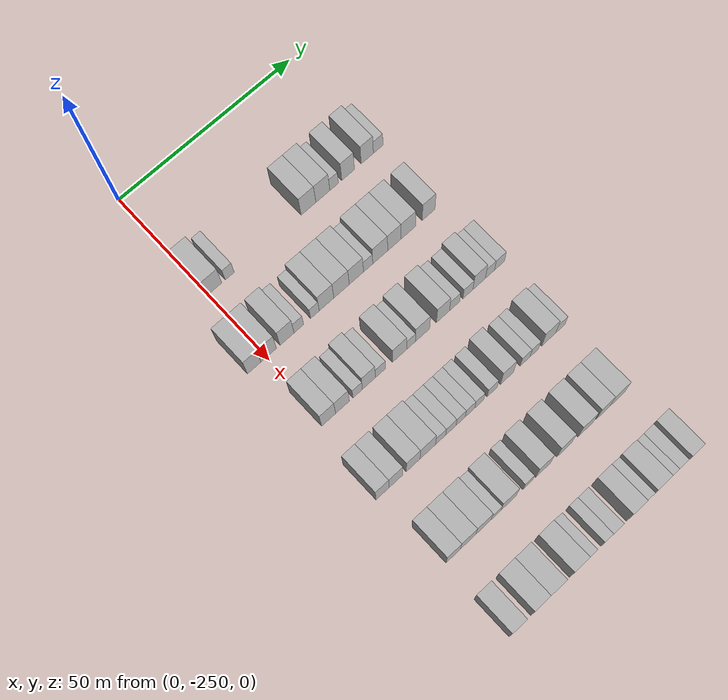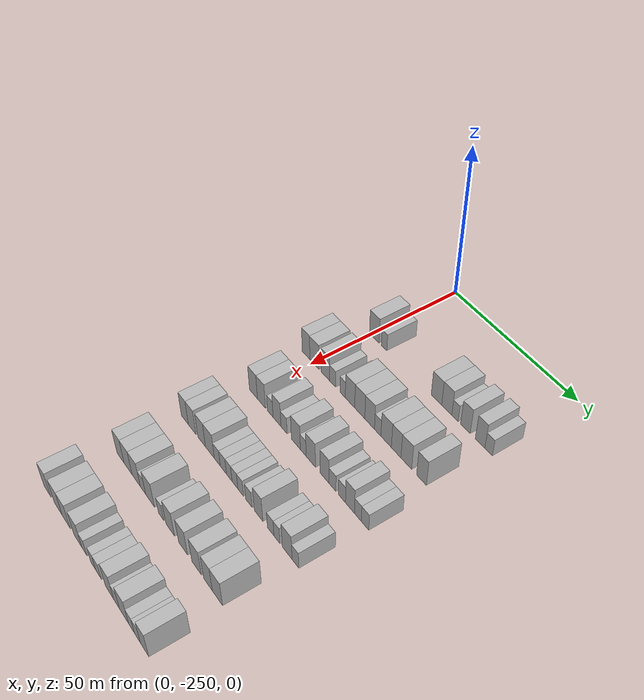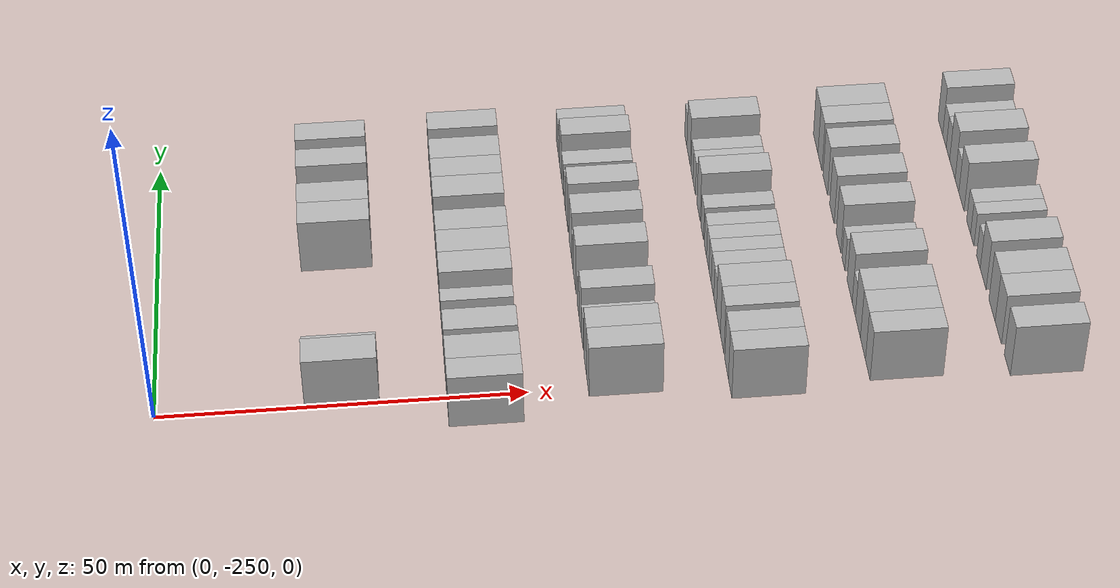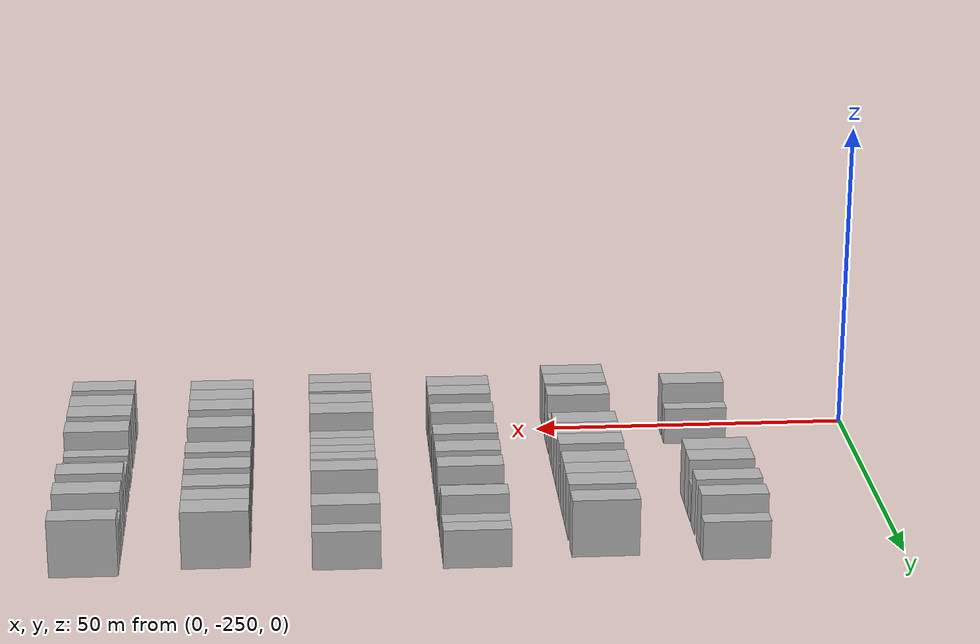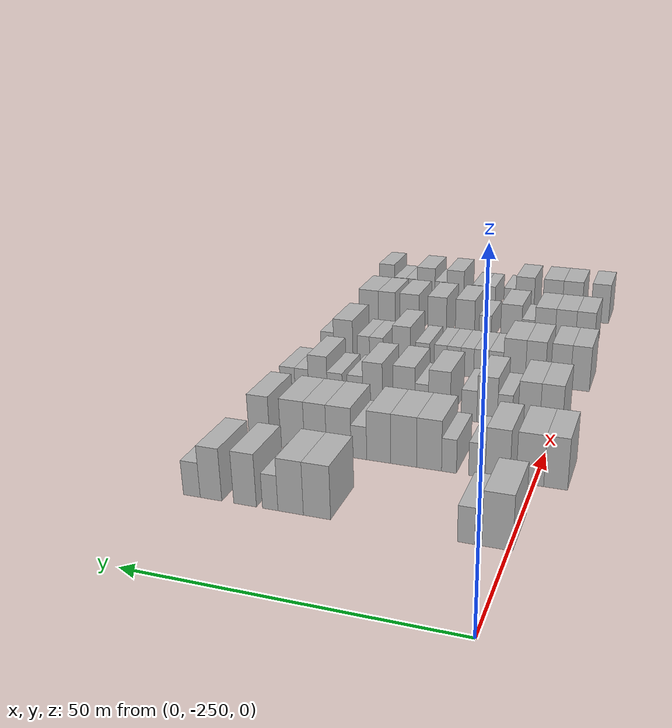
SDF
<sdf version="1.6">
 <world name="default">
  <model name="building_26">
   <static>1</static>
   <pose>25.0000 -248.3476 0 0.000000 0.000000 0.000000</pose>
   <link name="link">
    <pose>0 0 4.50 0 0 0</pose>
    <collision name="collision"><geometry><box><size>10.0000 4.4850 9.0000</size></box></geometry></collision>
    <visual name="visual">
     <cast_shadows>0</cast_shadows>
     <geometry><box><size>10.0000 4.4850 9.0000</size></box></geometry>
     <material>
      <script>
       <uri>model://HANNAS_wall/materials/scripts</uri>
       <uri>model://HANNAS_wall/materials/textures</uri>
       <name>vrc/HANNAS_wall</name>
      </script>
     </material>
    </visual>
   </link>
  </model>
  <model name="building_27">
   <static>1</static>
   <pose>25.0000 -243.8328 0 0.000000 0.000000 0.000000</pose>
   <link name="link">
    <pose>0 0 3.00 0 0 0</pose>
    <collision name="collision"><geometry><box><size>10.0000 2.5447 6.0000</size></box></geometry></collision>
    <visual name="visual">
     <cast_shadows>0</cast_shadows>
     <geometry><box><size>10.0000 2.5447 6.0000</size></box></geometry>
     <material>
      <script>
       <uri>model://HANNAS_wall/materials/scripts</uri>
       <uri>model://HANNAS_wall/materials/textures</uri>
       <name>vrc/HANNAS_wall</name>
      </script>
     </material>
    </visual>
   </link>
  </model>
  <model name="building_28">
   <static>1</static>
   <pose>25.0000 -221.0363 0 0.000000 0.000000 0.000000</pose>
   <link name="link">
    <pose>0 0 4.50 0 0 0</pose>
    <collision name="collision"><geometry><box><size>10.0000 4.3495 9.0000</size></box></geometry></collision>
    <visual name="visual">
     <cast_shadows>0</cast_shadows>
     <geometry><box><size>10.0000 4.3495 9.0000</size></box></geometry>
     <material>
      <script>
       <uri>model://HANNAS_wall/materials/scripts</uri>
       <uri>model://HANNAS_wall/materials/textures</uri>
       <name>vrc/HANNAS_wall</name>
      </script>
     </material>
    </visual>
   </link>
  </model>
  <model name="building_29">
   <static>1</static>
   <pose>25.0000 -216.8001 0 0.000000 0.000000 0.000000</pose>
   <link name="link">
    <pose>0 0 4.50 0 0 0</pose>
    <collision name="collision"><geometry><box><size>10.0000 4.1228 9.0000</size></box></geometry></collision>
    <visual name="visual">
     <cast_shadows>0</cast_shadows>
     <geometry><box><size>10.0000 4.1228 9.0000</size></box></geometry>
     <material>
      <script>
       <uri>model://HANNAS_wall/materials/scripts</uri>
       <uri>model://HANNAS_wall/materials/textures</uri>
       <name>vrc/HANNAS_wall</name>
      </script>
     </material>
    </visual>
   </link>
  </model>
  <model name="building_30">
   <static>1</static>
   <pose>25.0000 -213.4665 0 0.000000 0.000000 0.000000</pose>
   <link name="link">
    <pose>0 0 3.00 0 0 0</pose>
    <collision name="collision"><geometry><box><size>10.0000 2.5444 6.0000</size></box></geometry></collision>
    <visual name="visual">
     <cast_shadows>0</cast_shadows>
     <geometry><box><size>10.0000 2.5444 6.0000</size></box></geometry>
     <material>
      <script>
       <uri>model://HANNAS_wall/materials/scripts</uri>
       <uri>model://HANNAS_wall/materials/textures</uri>
       <name>vrc/HANNAS_wall</name>
      </script>
     </material>
    </visual>
   </link>
  </model>
  <model name="building_31">
   <static>1</static>
   <pose>25.0000 -209.2966 0 0.000000 0.000000 0.000000</pose>
   <link name="link">
    <pose>0 0 4.50 0 0 0</pose>
    <collision name="collision"><geometry><box><size>10.0000 3.7954 9.0000</size></box></geometry></collision>
    <visual name="visual">
     <cast_shadows>0</cast_shadows>
     <geometry><box><size>10.0000 3.7954 9.0000</size></box></geometry>
     <material>
      <script>
       <uri>model://HANNAS_wall/materials/scripts</uri>
       <uri>model://HANNAS_wall/materials/textures</uri>
       <name>vrc/HANNAS_wall</name>
      </script>
     </material>
    </visual>
   </link>
  </model>
  <model name="building_32">
   <static>1</static>
   <pose>25.0000 -203.5604 0 0.000000 0.000000 0.000000</pose>
   <link name="link">
    <pose>0 0 4.50 0 0 0</pose>
    <collision name="collision"><geometry><box><size>10.0000 3.6770 9.0000</size></box></geometry></collision>
    <visual name="visual">
     <cast_shadows>0</cast_shadows>
     <geometry><box><size>10.0000 3.6770 9.0000</size></box></geometry>
     <material>
      <script>
       <uri>model://HANNAS_wall/materials/scripts</uri>
       <uri>model://HANNAS_wall/materials/textures</uri>
       <name>vrc/HANNAS_wall</name>
      </script>
     </material>
    </visual>
   </link>
  </model>
  <model name="building_33">
   <static>1</static>
   <pose>25.0000 -200.2740 0 0.000000 0.000000 0.000000</pose>
   <link name="link">
    <pose>0 0 3.00 0 0 0</pose>
    <collision name="collision"><geometry><box><size>10.0000 2.8956 6.0000</size></box></geometry></collision>
    <visual name="visual">
     <cast_shadows>0</cast_shadows>
     <geometry><box><size>10.0000 2.8956 6.0000</size></box></geometry>
     <material>
      <script>
       <uri>model://HANNAS_wall/materials/scripts</uri>
       <uri>model://HANNAS_wall/materials/textures</uri>
       <name>vrc/HANNAS_wall</name>
      </script>
     </material>
    </visual>
   </link>
  </model>
  <model name="building_199">
   <static>1</static>
   <pose>44.0000 -253.4933 0 0.000000 0.000000 0.000000</pose>
   <link name="link">
    <pose>0 0 4.50 0 0 0</pose>
    <collision name="collision"><geometry><box><size>10.0000 3.7640 9.0000</size></box></geometry></collision>
    <visual name="visual">
     <cast_shadows>0</cast_shadows>
     <geometry><box><size>10.0000 3.7640 9.0000</size></box></geometry>
     <material>
      <script>
       <uri>model://HANNAS_wall/materials/scripts</uri>
       <uri>model://HANNAS_wall/materials/textures</uri>
       <name>vrc/HANNAS_wall</name>
      </script>
     </material>
    </visual>
   </link>
  </model>
  <model name="building_200">
   <static>1</static>
   <pose>44.0000 -249.4130 0 0.000000 0.000000 0.000000</pose>
   <link name="link">
    <pose>0 0 4.50 0 0 0</pose>
    <collision name="collision"><geometry><box><size>10.0000 4.3967 9.0000</size></box></geometry></collision>
    <visual name="visual">
     <cast_shadows>0</cast_shadows>
     <geometry><box><size>10.0000 4.3967 9.0000</size></box></geometry>
     <material>
      <script>
       <uri>model://HANNAS_wall/materials/scripts</uri>
       <uri>model://HANNAS_wall/materials/textures</uri>
       <name>vrc/HANNAS_wall</name>
      </script>
     </material>
    </visual>
   </link>
  </model>
  <model name="building_201">
   <static>1</static>
   <pose>44.0000 -244.2107 0 0.000000 0.000000 0.000000</pose>
   <link name="link">
    <pose>0 0 4.50 0 0 0</pose>
    <collision name="collision"><geometry><box><size>10.0000 4.0080 9.0000</size></box></geometry></collision>
    <visual name="visual">
     <cast_shadows>0</cast_shadows>
     <geometry><box><size>10.0000 4.0080 9.0000</size></box></geometry>
     <material>
      <script>
       <uri>model://HANNAS_wall/materials/scripts</uri>
       <uri>model://HANNAS_wall/materials/textures</uri>
       <name>vrc/HANNAS_wall</name>
      </script>
     </material>
    </visual>
   </link>
  </model>
  <model name="building_202">
   <static>1</static>
   <pose>44.0000 -240.8436 0 0.000000 0.000000 0.000000</pose>
   <link name="link">
    <pose>0 0 3.00 0 0 0</pose>
    <collision name="collision"><geometry><box><size>10.0000 2.7262 6.0000</size></box></geometry></collision>
    <visual name="visual">
     <cast_shadows>0</cast_shadows>
     <geometry><box><size>10.0000 2.7262 6.0000</size></box></geometry>
     <material>
      <script>
       <uri>model://HANNAS_wall/materials/scripts</uri>
       <uri>model://HANNAS_wall/materials/textures</uri>
       <name>vrc/HANNAS_wall</name>
      </script>
     </material>
    </visual>
   </link>
  </model>
  <model name="building_203">
   <static>1</static>
   <pose>44.0000 -236.2364 0 0.000000 0.000000 0.000000</pose>
   <link name="link">
    <pose>0 0 3.00 0 0 0</pose>
    <collision name="collision"><geometry><box><size>10.0000 2.4882 6.0000</size></box></geometry></collision>
    <visual name="visual">
     <cast_shadows>0</cast_shadows>
     <geometry><box><size>10.0000 2.4882 6.0000</size></box></geometry>
     <material>
      <script>
       <uri>model://HANNAS_wall/materials/scripts</uri>
       <uri>model://HANNAS_wall/materials/textures</uri>
       <name>vrc/HANNAS_wall</name>
      </script>
     </material>
    </visual>
   </link>
  </model>
  <model name="building_204">
   <static>1</static>
   <pose>44.0000 -232.8931 0 0.000000 0.000000 0.000000</pose>
   <link name="link">
    <pose>0 0 4.50 0 0 0</pose>
    <collision name="collision"><geometry><box><size>10.0000 4.1982 9.0000</size></box></geometry></collision>
    <visual name="visual">
     <cast_shadows>0</cast_shadows>
     <geometry><box><size>10.0000 4.1982 9.0000</size></box></geometry>
     <material>
      <script>
       <uri>model://HANNAS_wall/materials/scripts</uri>
       <uri>model://HANNAS_wall/materials/textures</uri>
       <name>vrc/HANNAS_wall</name>
      </script>
     </material>
    </visual>
   </link>
  </model>
  <model name="building_205">
   <static>1</static>
   <pose>44.0000 -228.5627 0 0.000000 0.000000 0.000000</pose>
   <link name="link">
    <pose>0 0 4.50 0 0 0</pose>
    <collision name="collision"><geometry><box><size>10.0000 4.4627 9.0000</size></box></geometry></collision>
    <visual name="visual">
     <cast_shadows>0</cast_shadows>
     <geometry><box><size>10.0000 4.4627 9.0000</size></box></geometry>
     <material>
      <script>
       <uri>model://HANNAS_wall/materials/scripts</uri>
       <uri>model://HANNAS_wall/materials/textures</uri>
       <name>vrc/HANNAS_wall</name>
      </script>
     </material>
    </visual>
   </link>
  </model>
  <model name="building_206">
   <static>1</static>
   <pose>44.0000 -224.2574 0 0.000000 0.000000 0.000000</pose>
   <link name="link">
    <pose>0 0 4.50 0 0 0</pose>
    <collision name="collision"><geometry><box><size>10.0000 4.1478 9.0000</size></box></geometry></collision>
    <visual name="visual">
     <cast_shadows>0</cast_shadows>
     <geometry><box><size>10.0000 4.1478 9.0000</size></box></geometry>
     <material>
      <script>
       <uri>model://HANNAS_wall/materials/scripts</uri>
       <uri>model://HANNAS_wall/materials/textures</uri>
       <name>vrc/HANNAS_wall</name>
      </script>
     </material>
    </visual>
   </link>
  </model>
  <model name="building_207">
   <static>1</static>
   <pose>44.0000 -220.8186 0 0.000000 0.000000 0.000000</pose>
   <link name="link">
    <pose>0 0 3.00 0 0 0</pose>
    <collision name="collision"><geometry><box><size>10.0000 2.7298 6.0000</size></box></geometry></collision>
    <visual name="visual">
     <cast_shadows>0</cast_shadows>
     <geometry><box><size>10.0000 2.7298 6.0000</size></box></geometry>
     <material>
      <script>
       <uri>model://HANNAS_wall/materials/scripts</uri>
       <uri>model://HANNAS_wall/materials/textures</uri>
       <name>vrc/HANNAS_wall</name>
      </script>
     </material>
    </visual>
   </link>
  </model>
  <model name="building_208">
   <static>1</static>
   <pose>44.0000 -217.2600 0 0.000000 0.000000 0.000000</pose>
   <link name="link">
    <pose>0 0 4.50 0 0 0</pose>
    <collision name="collision"><geometry><box><size>10.0000 4.3874 9.0000</size></box></geometry></collision>
    <visual name="visual">
     <cast_shadows>0</cast_shadows>
     <geometry><box><size>10.0000 4.3874 9.0000</size></box></geometry>
     <material>
      <script>
       <uri>model://HANNAS_wall/materials/scripts</uri>
       <uri>model://HANNAS_wall/materials/textures</uri>
       <name>vrc/HANNAS_wall</name>
      </script>
     </material>
    </visual>
   </link>
  </model>
  <model name="building_209">
   <static>1</static>
   <pose>44.0000 -213.0889 0 0.000000 0.000000 0.000000</pose>
   <link name="link">
    <pose>0 0 4.50 0 0 0</pose>
    <collision name="collision"><geometry><box><size>10.0000 3.9548 9.0000</size></box></geometry></collision>
    <visual name="visual">
     <cast_shadows>0</cast_shadows>
     <geometry><box><size>10.0000 3.9548 9.0000</size></box></geometry>
     <material>
      <script>
       <uri>model://HANNAS_wall/materials/scripts</uri>
       <uri>model://HANNAS_wall/materials/textures</uri>
       <name>vrc/HANNAS_wall</name>
      </script>
     </material>
    </visual>
   </link>
  </model>
  <model name="building_210">
   <static>1</static>
   <pose>44.0000 -208.9457 0 0.000000 0.000000 0.000000</pose>
   <link name="link">
    <pose>0 0 4.50 0 0 0</pose>
    <collision name="collision"><geometry><box><size>10.0000 4.3316 9.0000</size></box></geometry></collision>
    <visual name="visual">
     <cast_shadows>0</cast_shadows>
     <geometry><box><size>10.0000 4.3316 9.0000</size></box></geometry>
     <material>
      <script>
       <uri>model://HANNAS_wall/materials/scripts</uri>
       <uri>model://HANNAS_wall/materials/textures</uri>
       <name>vrc/HANNAS_wall</name>
      </script>
     </material>
    </visual>
   </link>
  </model>
  <model name="building_211">
   <static>1</static>
   <pose>44.0000 -202.8557 0 0.000000 0.000000 0.000000</pose>
   <link name="link">
    <pose>0 0 4.50 0 0 0</pose>
    <collision name="collision"><geometry><box><size>10.0000 3.8483 9.0000</size></box></geometry></collision>
    <visual name="visual">
     <cast_shadows>0</cast_shadows>
     <geometry><box><size>10.0000 3.8483 9.0000</size></box></geometry>
     <material>
      <script>
       <uri>model://HANNAS_wall/materials/scripts</uri>
       <uri>model://HANNAS_wall/materials/textures</uri>
       <name>vrc/HANNAS_wall</name>
      </script>
     </material>
    </visual>
   </link>
  </model>
  <model name="building_372">
   <static>1</static>
   <pose>63.0000 -249.5267 0 0.000000 0.000000 0.000000</pose>
   <link name="link">
    <pose>0 0 4.50 0 0 0</pose>
    <collision name="collision"><geometry><box><size>10.0000 3.9541 9.0000</size></box></geometry></collision>
    <visual name="visual">
     <cast_shadows>0</cast_shadows>
     <geometry><box><size>10.0000 3.9541 9.0000</size></box></geometry>
     <material>
      <script>
       <uri>model://HANNAS_wall/materials/scripts</uri>
       <uri>model://HANNAS_wall/materials/textures</uri>
       <name>vrc/HANNAS_wall</name>
      </script>
     </material>
    </visual>
   </link>
  </model>
  <model name="building_373">
   <static>1</static>
   <pose>63.0000 -245.6012 0 0.000000 0.000000 0.000000</pose>
   <link name="link">
    <pose>0 0 4.50 0 0 0</pose>
    <collision name="collision"><geometry><box><size>10.0000 3.8970 9.0000</size></box></geometry></collision>
    <visual name="visual">
     <cast_shadows>0</cast_shadows>
     <geometry><box><size>10.0000 3.8970 9.0000</size></box></geometry>
     <material>
      <script>
       <uri>model://HANNAS_wall/materials/scripts</uri>
       <uri>model://HANNAS_wall/materials/textures</uri>
       <name>vrc/HANNAS_wall</name>
      </script>
     </material>
    </visual>
   </link>
  </model>
  <model name="building_374">
   <static>1</static>
   <pose>63.0000 -241.3084 0 0.000000 0.000000 0.000000</pose>
   <link name="link">
    <pose>0 0 3.00 0 0 0</pose>
    <collision name="collision"><geometry><box><size>10.0000 2.6887 6.0000</size></box></geometry></collision>
    <visual name="visual">
     <cast_shadows>0</cast_shadows>
     <geometry><box><size>10.0000 2.6887 6.0000</size></box></geometry>
     <material>
      <script>
       <uri>model://HANNAS_wall/materials/scripts</uri>
       <uri>model://HANNAS_wall/materials/textures</uri>
       <name>vrc/HANNAS_wall</name>
      </script>
     </material>
    </visual>
   </link>
  </model>
  <model name="building_375">
   <static>1</static>
   <pose>63.0000 -238.1114 0 0.000000 0.000000 0.000000</pose>
   <link name="link">
    <pose>0 0 4.50 0 0 0</pose>
    <collision name="collision"><geometry><box><size>10.0000 3.7051 9.0000</size></box></geometry></collision>
    <visual name="visual">
     <cast_shadows>0</cast_shadows>
     <geometry><box><size>10.0000 3.7051 9.0000</size></box></geometry>
     <material>
      <script>
       <uri>model://HANNAS_wall/materials/scripts</uri>
       <uri>model://HANNAS_wall/materials/textures</uri>
       <name>vrc/HANNAS_wall</name>
      </script>
     </material>
    </visual>
   </link>
  </model>
  <model name="building_376">
   <static>1</static>
   <pose>63.0000 -234.8162 0 0.000000 0.000000 0.000000</pose>
   <link name="link">
    <pose>0 0 3.00 0 0 0</pose>
    <collision name="collision"><geometry><box><size>10.0000 2.8853 6.0000</size></box></geometry></collision>
    <visual name="visual">
     <cast_shadows>0</cast_shadows>
     <geometry><box><size>10.0000 2.8853 6.0000</size></box></geometry>
     <material>
      <script>
       <uri>model://HANNAS_wall/materials/scripts</uri>
       <uri>model://HANNAS_wall/materials/textures</uri>
       <name>vrc/HANNAS_wall</name>
      </script>
     </material>
    </visual>
   </link>
  </model>
  <model name="building_377">
   <static>1</static>
   <pose>63.0000 -229.3364 0 0.000000 0.000000 0.000000</pose>
   <link name="link">
    <pose>0 0 4.50 0 0 0</pose>
    <collision name="collision"><geometry><box><size>10.0000 4.0744 9.0000</size></box></geometry></collision>
    <visual name="visual">
     <cast_shadows>0</cast_shadows>
     <geometry><box><size>10.0000 4.0744 9.0000</size></box></geometry>
     <material>
      <script>
       <uri>model://HANNAS_wall/materials/scripts</uri>
       <uri>model://HANNAS_wall/materials/textures</uri>
       <name>vrc/HANNAS_wall</name>
      </script>
     </material>
    </visual>
   </link>
  </model>
  <model name="building_378">
   <static>1</static>
   <pose>63.0000 -226.0059 0 0.000000 0.000000 0.000000</pose>
   <link name="link">
    <pose>0 0 3.00 0 0 0</pose>
    <collision name="collision"><geometry><box><size>10.0000 2.5865 6.0000</size></box></geometry></collision>
    <visual name="visual">
     <cast_shadows>0</cast_shadows>
     <geometry><box><size>10.0000 2.5865 6.0000</size></box></geometry>
     <material>
      <script>
       <uri>model://HANNAS_wall/materials/scripts</uri>
       <uri>model://HANNAS_wall/materials/textures</uri>
       <name>vrc/HANNAS_wall</name>
      </script>
     </material>
    </visual>
   </link>
  </model>
  <model name="building_379">
   <static>1</static>
   <pose>63.0000 -222.6329 0 0.000000 0.000000 0.000000</pose>
   <link name="link">
    <pose>0 0 4.50 0 0 0</pose>
    <collision name="collision"><geometry><box><size>10.0000 4.1596 9.0000</size></box></geometry></collision>
    <visual name="visual">
     <cast_shadows>0</cast_shadows>
     <geometry><box><size>10.0000 4.1596 9.0000</size></box></geometry>
     <material>
      <script>
       <uri>model://HANNAS_wall/materials/scripts</uri>
       <uri>model://HANNAS_wall/materials/textures</uri>
       <name>vrc/HANNAS_wall</name>
      </script>
     </material>
    </visual>
   </link>
  </model>
  <model name="building_380">
   <static>1</static>
   <pose>63.0000 -216.6517 0 0.000000 0.000000 0.000000</pose>
   <link name="link">
    <pose>0 0 4.50 0 0 0</pose>
    <collision name="collision"><geometry><box><size>10.0000 3.8028 9.0000</size></box></geometry></collision>
    <visual name="visual">
     <cast_shadows>0</cast_shadows>
     <geometry><box><size>10.0000 3.8028 9.0000</size></box></geometry>
     <material>
      <script>
       <uri>model://HANNAS_wall/materials/scripts</uri>
       <uri>model://HANNAS_wall/materials/textures</uri>
       <name>vrc/HANNAS_wall</name>
      </script>
     </material>
    </visual>
   </link>
  </model>
  <model name="building_381">
   <static>1</static>
   <pose>63.0000 -213.2527 0 0.000000 0.000000 0.000000</pose>
   <link name="link">
    <pose>0 0 3.00 0 0 0</pose>
    <collision name="collision"><geometry><box><size>10.0000 2.9953 6.0000</size></box></geometry></collision>
    <visual name="visual">
     <cast_shadows>0</cast_shadows>
     <geometry><box><size>10.0000 2.9953 6.0000</size></box></geometry>
     <material>
      <script>
       <uri>model://HANNAS_wall/materials/scripts</uri>
       <uri>model://HANNAS_wall/materials/textures</uri>
       <name>vrc/HANNAS_wall</name>
      </script>
     </material>
    </visual>
   </link>
  </model>
  <model name="building_382">
   <static>1</static>
   <pose>63.0000 -209.2647 0 0.000000 0.000000 0.000000</pose>
   <link name="link">
    <pose>0 0 3.00 0 0 0</pose>
    <collision name="collision"><geometry><box><size>10.0000 2.9806 6.0000</size></box></geometry></collision>
    <visual name="visual">
     <cast_shadows>0</cast_shadows>
     <geometry><box><size>10.0000 2.9806 6.0000</size></box></geometry>
     <material>
      <script>
       <uri>model://HANNAS_wall/materials/scripts</uri>
       <uri>model://HANNAS_wall/materials/textures</uri>
       <name>vrc/HANNAS_wall</name>
      </script>
     </material>
    </visual>
   </link>
  </model>
  <model name="building_383">
   <static>1</static>
   <pose>63.0000 -205.9124 0 0.000000 0.000000 0.000000</pose>
   <link name="link">
    <pose>0 0 4.50 0 0 0</pose>
    <collision name="collision"><geometry><box><size>10.0000 3.7240 9.0000</size></box></geometry></collision>
    <visual name="visual">
     <cast_shadows>0</cast_shadows>
     <geometry><box><size>10.0000 3.7240 9.0000</size></box></geometry>
     <material>
      <script>
       <uri>model://HANNAS_wall/materials/scripts</uri>
       <uri>model://HANNAS_wall/materials/textures</uri>
       <name>vrc/HANNAS_wall</name>
      </script>
     </material>
    </visual>
   </link>
  </model>
  <model name="building_384">
   <static>1</static>
   <pose>63.0000 -202.6756 0 0.000000 0.000000 0.000000</pose>
   <link name="link">
    <pose>0 0 3.00 0 0 0</pose>
    <collision name="collision"><geometry><box><size>10.0000 2.7496 6.0000</size></box></geometry></collision>
    <visual name="visual">
     <cast_shadows>0</cast_shadows>
     <geometry><box><size>10.0000 2.7496 6.0000</size></box></geometry>
     <material>
      <script>
       <uri>model://HANNAS_wall/materials/scripts</uri>
       <uri>model://HANNAS_wall/materials/textures</uri>
       <name>vrc/HANNAS_wall</name>
      </script>
     </material>
    </visual>
   </link>
  </model>
  <model name="building_385">
   <static>1</static>
   <pose>63.0000 -199.8024 0 0.000000 0.000000 0.000000</pose>
   <link name="link">
    <pose>0 0 3.00 0 0 0</pose>
    <collision name="collision"><geometry><box><size>10.0000 2.9968 6.0000</size></box></geometry></collision>
    <visual name="visual">
     <cast_shadows>0</cast_shadows>
     <geometry><box><size>10.0000 2.9968 6.0000</size></box></geometry>
     <material>
      <script>
       <uri>model://HANNAS_wall/materials/scripts</uri>
       <uri>model://HANNAS_wall/materials/textures</uri>
       <name>vrc/HANNAS_wall</name>
      </script>
     </material>
    </visual>
   </link>
  </model>
  <model name="building_534">
   <static>1</static>
   <pose>82.0000 -251.8483 0 0.000000 0.000000 0.000000</pose>
   <link name="link">
    <pose>0 0 4.50 0 0 0</pose>
    <collision name="collision"><geometry><box><size>10.0000 3.6533 9.0000</size></box></geometry></collision>
    <visual name="visual">
     <cast_shadows>0</cast_shadows>
     <geometry><box><size>10.0000 3.6533 9.0000</size></box></geometry>
     <material>
      <script>
       <uri>model://HANNAS_wall/materials/scripts</uri>
       <uri>model://HANNAS_wall/materials/textures</uri>
       <name>vrc/HANNAS_wall</name>
      </script>
     </material>
    </visual>
   </link>
  </model>
  <model name="building_535">
   <static>1</static>
   <pose>82.0000 -248.1005 0 0.000000 0.000000 0.000000</pose>
   <link name="link">
    <pose>0 0 4.50 0 0 0</pose>
    <collision name="collision"><geometry><box><size>10.0000 3.8424 9.0000</size></box></geometry></collision>
    <visual name="visual">
     <cast_shadows>0</cast_shadows>
     <geometry><box><size>10.0000 3.8424 9.0000</size></box></geometry>
     <material>
      <script>
       <uri>model://HANNAS_wall/materials/scripts</uri>
       <uri>model://HANNAS_wall/materials/textures</uri>
       <name>vrc/HANNAS_wall</name>
      </script>
     </material>
    </visual>
   </link>
  </model>
  <model name="building_536">
   <static>1</static>
   <pose>82.0000 -243.2430 0 0.000000 0.000000 0.000000</pose>
   <link name="link">
    <pose>0 0 4.50 0 0 0</pose>
    <collision name="collision"><geometry><box><size>10.0000 3.8726 9.0000</size></box></geometry></collision>
    <visual name="visual">
     <cast_shadows>0</cast_shadows>
     <geometry><box><size>10.0000 3.8726 9.0000</size></box></geometry>
     <material>
      <script>
       <uri>model://HANNAS_wall/materials/scripts</uri>
       <uri>model://HANNAS_wall/materials/textures</uri>
       <name>vrc/HANNAS_wall</name>
      </script>
     </material>
    </visual>
   </link>
  </model>
  <model name="building_537">
   <static>1</static>
   <pose>82.0000 -239.1153 0 0.000000 0.000000 0.000000</pose>
   <link name="link">
    <pose>0 0 4.50 0 0 0</pose>
    <collision name="collision"><geometry><box><size>10.0000 4.3827 9.0000</size></box></geometry></collision>
    <visual name="visual">
     <cast_shadows>0</cast_shadows>
     <geometry><box><size>10.0000 4.3827 9.0000</size></box></geometry>
     <material>
      <script>
       <uri>model://HANNAS_wall/materials/scripts</uri>
       <uri>model://HANNAS_wall/materials/textures</uri>
       <name>vrc/HANNAS_wall</name>
      </script>
     </material>
    </visual>
   </link>
  </model>
  <model name="building_538">
   <static>1</static>
   <pose>82.0000 -235.4715 0 0.000000 0.000000 0.000000</pose>
   <link name="link">
    <pose>0 0 3.00 0 0 0</pose>
    <collision name="collision"><geometry><box><size>10.0000 2.9048 6.0000</size></box></geometry></collision>
    <visual name="visual">
     <cast_shadows>0</cast_shadows>
     <geometry><box><size>10.0000 2.9048 6.0000</size></box></geometry>
     <material>
      <script>
       <uri>model://HANNAS_wall/materials/scripts</uri>
       <uri>model://HANNAS_wall/materials/textures</uri>
       <name>vrc/HANNAS_wall</name>
      </script>
     </material>
    </visual>
   </link>
  </model>
  <model name="building_539">
   <static>1</static>
   <pose>82.0000 -232.5388 0 0.000000 0.000000 0.000000</pose>
   <link name="link">
    <pose>0 0 3.00 0 0 0</pose>
    <collision name="collision"><geometry><box><size>10.0000 2.9607 6.0000</size></box></geometry></collision>
    <visual name="visual">
     <cast_shadows>0</cast_shadows>
     <geometry><box><size>10.0000 2.9607 6.0000</size></box></geometry>
     <material>
      <script>
       <uri>model://HANNAS_wall/materials/scripts</uri>
       <uri>model://HANNAS_wall/materials/textures</uri>
       <name>vrc/HANNAS_wall</name>
      </script>
     </material>
    </visual>
   </link>
  </model>
  <model name="building_540">
   <static>1</static>
   <pose>82.0000 -229.7271 0 0.000000 0.000000 0.000000</pose>
   <link name="link">
    <pose>0 0 3.00 0 0 0</pose>
    <collision name="collision"><geometry><box><size>10.0000 2.6626 6.0000</size></box></geometry></collision>
    <visual name="visual">
     <cast_shadows>0</cast_shadows>
     <geometry><box><size>10.0000 2.6626 6.0000</size></box></geometry>
     <material>
      <script>
       <uri>model://HANNAS_wall/materials/scripts</uri>
       <uri>model://HANNAS_wall/materials/textures</uri>
       <name>vrc/HANNAS_wall</name>
      </script>
     </material>
    </visual>
   </link>
  </model>
  <model name="building_541">
   <static>1</static>
   <pose>82.0000 -227.0127 0 0.000000 0.000000 0.000000</pose>
   <link name="link">
    <pose>0 0 3.00 0 0 0</pose>
    <collision name="collision"><geometry><box><size>10.0000 2.7662 6.0000</size></box></geometry></collision>
    <visual name="visual">
     <cast_shadows>0</cast_shadows>
     <geometry><box><size>10.0000 2.7662 6.0000</size></box></geometry>
     <material>
      <script>
       <uri>model://HANNAS_wall/materials/scripts</uri>
       <uri>model://HANNAS_wall/materials/textures</uri>
       <name>vrc/HANNAS_wall</name>
      </script>
     </material>
    </visual>
   </link>
  </model>
  <model name="building_542">
   <static>1</static>
   <pose>82.0000 -224.3236 0 0.000000 0.000000 0.000000</pose>
   <link name="link">
    <pose>0 0 3.00 0 0 0</pose>
    <collision name="collision"><geometry><box><size>10.0000 2.6121 6.0000</size></box></geometry></collision>
    <visual name="visual">
     <cast_shadows>0</cast_shadows>
     <geometry><box><size>10.0000 2.6121 6.0000</size></box></geometry>
     <material>
      <script>
       <uri>model://HANNAS_wall/materials/scripts</uri>
       <uri>model://HANNAS_wall/materials/textures</uri>
       <name>vrc/HANNAS_wall</name>
      </script>
     </material>
    </visual>
   </link>
  </model>
  <model name="building_543">
   <static>1</static>
   <pose>82.0000 -220.5605 0 0.000000 0.000000 0.000000</pose>
   <link name="link">
    <pose>0 0 3.00 0 0 0</pose>
    <collision name="collision"><geometry><box><size>10.0000 2.9143 6.0000</size></box></geometry></collision>
    <visual name="visual">
     <cast_shadows>0</cast_shadows>
     <geometry><box><size>10.0000 2.9143 6.0000</size></box></geometry>
     <material>
      <script>
       <uri>model://HANNAS_wall/materials/scripts</uri>
       <uri>model://HANNAS_wall/materials/textures</uri>
       <name>vrc/HANNAS_wall</name>
      </script>
     </material>
    </visual>
   </link>
  </model>
  <model name="building_544">
   <static>1</static>
   <pose>82.0000 -216.1985 0 0.000000 0.000000 0.000000</pose>
   <link name="link">
    <pose>0 0 4.50 0 0 0</pose>
    <collision name="collision"><geometry><box><size>10.0000 3.8096 9.0000</size></box></geometry></collision>
    <visual name="visual">
     <cast_shadows>0</cast_shadows>
     <geometry><box><size>10.0000 3.8096 9.0000</size></box></geometry>
     <material>
      <script>
       <uri>model://HANNAS_wall/materials/scripts</uri>
       <uri>model://HANNAS_wall/materials/textures</uri>
       <name>vrc/HANNAS_wall</name>
      </script>
     </material>
    </visual>
   </link>
  </model>
  <model name="building_545">
   <static>1</static>
   <pose>82.0000 -210.8579 0 0.000000 0.000000 0.000000</pose>
   <link name="link">
    <pose>0 0 3.00 0 0 0</pose>
    <collision name="collision"><geometry><box><size>10.0000 2.8716 6.0000</size></box></geometry></collision>
    <visual name="visual">
     <cast_shadows>0</cast_shadows>
     <geometry><box><size>10.0000 2.8716 6.0000</size></box></geometry>
     <material>
      <script>
       <uri>model://HANNAS_wall/materials/scripts</uri>
       <uri>model://HANNAS_wall/materials/textures</uri>
       <name>vrc/HANNAS_wall</name>
      </script>
     </material>
    </visual>
   </link>
  </model>
  <model name="building_546">
   <static>1</static>
   <pose>82.0000 -208.1456 0 0.000000 0.000000 0.000000</pose>
   <link name="link">
    <pose>0 0 3.00 0 0 0</pose>
    <collision name="collision"><geometry><box><size>10.0000 2.5532 6.0000</size></box></geometry></collision>
    <visual name="visual">
     <cast_shadows>0</cast_shadows>
     <geometry><box><size>10.0000 2.5532 6.0000</size></box></geometry>
     <material>
      <script>
       <uri>model://HANNAS_wall/materials/scripts</uri>
       <uri>model://HANNAS_wall/materials/textures</uri>
       <name>vrc/HANNAS_wall</name>
      </script>
     </material>
    </visual>
   </link>
  </model>
  <model name="building_547">
   <static>1</static>
   <pose>82.0000 -203.7970 0 0.000000 0.000000 0.000000</pose>
   <link name="link">
    <pose>0 0 4.50 0 0 0</pose>
    <collision name="collision"><geometry><box><size>10.0000 4.1439 9.0000</size></box></geometry></collision>
    <visual name="visual">
     <cast_shadows>0</cast_shadows>
     <geometry><box><size>10.0000 4.1439 9.0000</size></box></geometry>
     <material>
      <script>
       <uri>model://HANNAS_wall/materials/scripts</uri>
       <uri>model://HANNAS_wall/materials/textures</uri>
       <name>vrc/HANNAS_wall</name>
      </script>
     </material>
    </visual>
   </link>
  </model>
  <model name="building_548">
   <static>1</static>
   <pose>82.0000 -200.3211 0 0.000000 0.000000 0.000000</pose>
   <link name="link">
    <pose>0 0 3.00 0 0 0</pose>
    <collision name="collision"><geometry><box><size>10.0000 2.8079 6.0000</size></box></geometry></collision>
    <visual name="visual">
     <cast_shadows>0</cast_shadows>
     <geometry><box><size>10.0000 2.8079 6.0000</size></box></geometry>
     <material>
      <script>
       <uri>model://HANNAS_wall/materials/scripts</uri>
       <uri>model://HANNAS_wall/materials/textures</uri>
       <name>vrc/HANNAS_wall</name>
      </script>
     </material>
    </visual>
   </link>
  </model>
  <model name="building_717">
   <static>1</static>
   <pose>101.0000 -250.0864 0 0.000000 0.000000 0.000000</pose>
   <link name="link">
    <pose>0 0 4.50 0 0 0</pose>
    <collision name="collision"><geometry><box><size>10.0000 3.9248 9.0000</size></box></geometry></collision>
    <visual name="visual">
     <cast_shadows>0</cast_shadows>
     <geometry><box><size>10.0000 3.9248 9.0000</size></box></geometry>
     <material>
      <script>
       <uri>model://HANNAS_wall/materials/scripts</uri>
       <uri>model://HANNAS_wall/materials/textures</uri>
       <name>vrc/HANNAS_wall</name>
      </script>
     </material>
    </visual>
   </link>
  </model>
  <model name="building_718">
   <static>1</static>
   <pose>101.0000 -245.9825 0 0.000000 0.000000 0.000000</pose>
   <link name="link">
    <pose>0 0 4.50 0 0 0</pose>
    <collision name="collision"><geometry><box><size>10.0000 4.2830 9.0000</size></box></geometry></collision>
    <visual name="visual">
     <cast_shadows>0</cast_shadows>
     <geometry><box><size>10.0000 4.2830 9.0000</size></box></geometry>
     <material>
      <script>
       <uri>model://HANNAS_wall/materials/scripts</uri>
       <uri>model://HANNAS_wall/materials/textures</uri>
       <name>vrc/HANNAS_wall</name>
      </script>
     </material>
    </visual>
   </link>
  </model>
  <model name="building_719">
   <static>1</static>
   <pose>101.0000 -241.6731 0 0.000000 0.000000 0.000000</pose>
   <link name="link">
    <pose>0 0 4.50 0 0 0</pose>
    <collision name="collision"><geometry><box><size>10.0000 4.3359 9.0000</size></box></geometry></collision>
    <visual name="visual">
     <cast_shadows>0</cast_shadows>
     <geometry><box><size>10.0000 4.3359 9.0000</size></box></geometry>
     <material>
      <script>
       <uri>model://HANNAS_wall/materials/scripts</uri>
       <uri>model://HANNAS_wall/materials/textures</uri>
       <name>vrc/HANNAS_wall</name>
      </script>
     </material>
    </visual>
   </link>
  </model>
  <model name="building_720">
   <static>1</static>
   <pose>101.0000 -238.1117 0 0.000000 0.000000 0.000000</pose>
   <link name="link">
    <pose>0 0 3.00 0 0 0</pose>
    <collision name="collision"><geometry><box><size>10.0000 2.7869 6.0000</size></box></geometry></collision>
    <visual name="visual">
     <cast_shadows>0</cast_shadows>
     <geometry><box><size>10.0000 2.7869 6.0000</size></box></geometry>
     <material>
      <script>
       <uri>model://HANNAS_wall/materials/scripts</uri>
       <uri>model://HANNAS_wall/materials/textures</uri>
       <name>vrc/HANNAS_wall</name>
      </script>
     </material>
    </visual>
   </link>
  </model>
  <model name="building_721">
   <static>1</static>
   <pose>101.0000 -234.4809 0 0.000000 0.000000 0.000000</pose>
   <link name="link">
    <pose>0 0 4.50 0 0 0</pose>
    <collision name="collision"><geometry><box><size>10.0000 4.4746 9.0000</size></box></geometry></collision>
    <visual name="visual">
     <cast_shadows>0</cast_shadows>
     <geometry><box><size>10.0000 4.4746 9.0000</size></box></geometry>
     <material>
      <script>
       <uri>model://HANNAS_wall/materials/scripts</uri>
       <uri>model://HANNAS_wall/materials/textures</uri>
       <name>vrc/HANNAS_wall</name>
      </script>
     </material>
    </visual>
   </link>
  </model>
  <model name="building_722">
   <static>1</static>
   <pose>101.0000 -228.9155 0 0.000000 0.000000 0.000000</pose>
   <link name="link">
    <pose>0 0 3.00 0 0 0</pose>
    <collision name="collision"><geometry><box><size>10.0000 2.6561 6.0000</size></box></geometry></collision>
    <visual name="visual">
     <cast_shadows>0</cast_shadows>
     <geometry><box><size>10.0000 2.6561 6.0000</size></box></geometry>
     <material>
      <script>
       <uri>model://HANNAS_wall/materials/scripts</uri>
       <uri>model://HANNAS_wall/materials/textures</uri>
       <name>vrc/HANNAS_wall</name>
      </script>
     </material>
    </visual>
   </link>
  </model>
  <model name="building_723">
   <static>1</static>
   <pose>101.0000 -224.4755 0 0.000000 0.000000 0.000000</pose>
   <link name="link">
    <pose>0 0 4.50 0 0 0</pose>
    <collision name="collision"><geometry><box><size>10.0000 4.2240 9.0000</size></box></geometry></collision>
    <visual name="visual">
     <cast_shadows>0</cast_shadows>
     <geometry><box><size>10.0000 4.2240 9.0000</size></box></geometry>
     <material>
      <script>
       <uri>model://HANNAS_wall/materials/scripts</uri>
       <uri>model://HANNAS_wall/materials/textures</uri>
       <name>vrc/HANNAS_wall</name>
      </script>
     </material>
    </visual>
   </link>
  </model>
  <model name="building_724">
   <static>1</static>
   <pose>101.0000 -218.2609 0 0.000000 0.000000 0.000000</pose>
   <link name="link">
    <pose>0 0 4.50 0 0 0</pose>
    <collision name="collision"><geometry><box><size>10.0000 4.2051 9.0000</size></box></geometry></collision>
    <visual name="visual">
     <cast_shadows>0</cast_shadows>
     <geometry><box><size>10.0000 4.2051 9.0000</size></box></geometry>
     <material>
      <script>
       <uri>model://HANNAS_wall/materials/scripts</uri>
       <uri>model://HANNAS_wall/materials/textures</uri>
       <name>vrc/HANNAS_wall</name>
      </script>
     </material>
    </visual>
   </link>
  </model>
  <model name="building_725">
   <static>1</static>
   <pose>101.0000 -211.9775 0 0.000000 0.000000 0.000000</pose>
   <link name="link">
    <pose>0 0 4.50 0 0 0</pose>
    <collision name="collision"><geometry><box><size>10.0000 4.3617 9.0000</size></box></geometry></collision>
    <visual name="visual">
     <cast_shadows>0</cast_shadows>
     <geometry><box><size>10.0000 4.3617 9.0000</size></box></geometry>
     <material>
      <script>
       <uri>model://HANNAS_wall/materials/scripts</uri>
       <uri>model://HANNAS_wall/materials/textures</uri>
       <name>vrc/HANNAS_wall</name>
      </script>
     </material>
    </visual>
   </link>
  </model>
  <model name="building_726">
   <static>1</static>
   <pose>101.0000 -206.8526 0 0.000000 0.000000 0.000000</pose>
   <link name="link">
    <pose>0 0 4.50 0 0 0</pose>
    <collision name="collision"><geometry><box><size>10.0000 3.8881 9.0000</size></box></geometry></collision>
    <visual name="visual">
     <cast_shadows>0</cast_shadows>
     <geometry><box><size>10.0000 3.8881 9.0000</size></box></geometry>
     <material>
      <script>
       <uri>model://HANNAS_wall/materials/scripts</uri>
       <uri>model://HANNAS_wall/materials/textures</uri>
       <name>vrc/HANNAS_wall</name>
      </script>
     </material>
    </visual>
   </link>
  </model>
  <model name="building_727">
   <static>1</static>
   <pose>101.0000 -202.6617 0 0.000000 0.000000 0.000000</pose>
   <link name="link">
    <pose>0 0 4.50 0 0 0</pose>
    <collision name="collision"><geometry><box><size>10.0000 4.4936 9.0000</size></box></geometry></collision>
    <visual name="visual">
     <cast_shadows>0</cast_shadows>
     <geometry><box><size>10.0000 4.4936 9.0000</size></box></geometry>
     <material>
      <script>
       <uri>model://HANNAS_wall/materials/scripts</uri>
       <uri>model://HANNAS_wall/materials/textures</uri>
       <name>vrc/HANNAS_wall</name>
      </script>
     </material>
    </visual>
   </link>
  </model>
  <model name="building_889">
   <static>1</static>
   <pose>120.0000 -250.8797 0 0.000000 0.000000 0.000000</pose>
   <link name="link">
    <pose>0 0 4.50 0 0 0</pose>
    <collision name="collision"><geometry><box><size>10.0000 4.0751 9.0000</size></box></geometry></collision>
    <visual name="visual">
     <cast_shadows>0</cast_shadows>
     <geometry><box><size>10.0000 4.0751 9.0000</size></box></geometry>
     <material>
      <script>
       <uri>model://HANNAS_wall/materials/scripts</uri>
       <uri>model://HANNAS_wall/materials/textures</uri>
       <name>vrc/HANNAS_wall</name>
      </script>
     </material>
    </visual>
   </link>
  </model>
  <model name="building_890">
   <static>1</static>
   <pose>120.0000 -244.6124 0 0.000000 0.000000 0.000000</pose>
   <link name="link">
    <pose>0 0 4.50 0 0 0</pose>
    <collision name="collision"><geometry><box><size>10.0000 4.4594 9.0000</size></box></geometry></collision>
    <visual name="visual">
     <cast_shadows>0</cast_shadows>
     <geometry><box><size>10.0000 4.4594 9.0000</size></box></geometry>
     <material>
      <script>
       <uri>model://HANNAS_wall/materials/scripts</uri>
       <uri>model://HANNAS_wall/materials/textures</uri>
       <name>vrc/HANNAS_wall</name>
      </script>
     </material>
    </visual>
   </link>
  </model>
  <model name="building_891">
   <static>1</static>
   <pose>120.0000 -240.1446 0 0.000000 0.000000 0.000000</pose>
   <link name="link">
    <pose>0 0 4.50 0 0 0</pose>
    <collision name="collision"><geometry><box><size>10.0000 4.4762 9.0000</size></box></geometry></collision>
    <visual name="visual">
     <cast_shadows>0</cast_shadows>
     <geometry><box><size>10.0000 4.4762 9.0000</size></box></geometry>
     <material>
      <script>
       <uri>model://HANNAS_wall/materials/scripts</uri>
       <uri>model://HANNAS_wall/materials/textures</uri>
       <name>vrc/HANNAS_wall</name>
      </script>
     </material>
    </visual>
   </link>
  </model>
  <model name="building_892">
   <static>1</static>
   <pose>120.0000 -233.7519 0 0.000000 0.000000 0.000000</pose>
   <link name="link">
    <pose>0 0 4.50 0 0 0</pose>
    <collision name="collision"><geometry><box><size>10.0000 4.3091 9.0000</size></box></geometry></collision>
    <visual name="visual">
     <cast_shadows>0</cast_shadows>
     <geometry><box><size>10.0000 4.3091 9.0000</size></box></geometry>
     <material>
      <script>
       <uri>model://HANNAS_wall/materials/scripts</uri>
       <uri>model://HANNAS_wall/materials/textures</uri>
       <name>vrc/HANNAS_wall</name>
      </script>
     </material>
    </visual>
   </link>
  </model>
  <model name="building_893">
   <static>1</static>
   <pose>120.0000 -230.2392 0 0.000000 0.000000 0.000000</pose>
   <link name="link">
    <pose>0 0 3.00 0 0 0</pose>
    <collision name="collision"><geometry><box><size>10.0000 2.7163 6.0000</size></box></geometry></collision>
    <visual name="visual">
     <cast_shadows>0</cast_shadows>
     <geometry><box><size>10.0000 2.7163 6.0000</size></box></geometry>
     <material>
      <script>
       <uri>model://HANNAS_wall/materials/scripts</uri>
       <uri>model://HANNAS_wall/materials/textures</uri>
       <name>vrc/HANNAS_wall</name>
      </script>
     </material>
    </visual>
   </link>
  </model>
  <model name="building_894">
   <static>1</static>
   <pose>120.0000 -225.6188 0 0.000000 0.000000 0.000000</pose>
   <link name="link">
    <pose>0 0 3.00 0 0 0</pose>
    <collision name="collision"><geometry><box><size>10.0000 2.5243 6.0000</size></box></geometry></collision>
    <visual name="visual">
     <cast_shadows>0</cast_shadows>
     <geometry><box><size>10.0000 2.5243 6.0000</size></box></geometry>
     <material>
      <script>
       <uri>model://HANNAS_wall/materials/scripts</uri>
       <uri>model://HANNAS_wall/materials/textures</uri>
       <name>vrc/HANNAS_wall</name>
      </script>
     </material>
    </visual>
   </link>
  </model>
  <model name="building_895">
   <static>1</static>
   <pose>120.0000 -222.8808 0 0.000000 0.000000 0.000000</pose>
   <link name="link">
    <pose>0 0 3.00 0 0 0</pose>
    <collision name="collision"><geometry><box><size>10.0000 2.9517 6.0000</size></box></geometry></collision>
    <visual name="visual">
     <cast_shadows>0</cast_shadows>
     <geometry><box><size>10.0000 2.9517 6.0000</size></box></geometry>
     <material>
      <script>
       <uri>model://HANNAS_wall/materials/scripts</uri>
       <uri>model://HANNAS_wall/materials/textures</uri>
       <name>vrc/HANNAS_wall</name>
      </script>
     </material>
    </visual>
   </link>
  </model>
  <model name="building_896">
   <static>1</static>
   <pose>120.0000 -217.3781 0 0.000000 0.000000 0.000000</pose>
   <link name="link">
    <pose>0 0 4.50 0 0 0</pose>
    <collision name="collision"><geometry><box><size>10.0000 4.0537 9.0000</size></box></geometry></collision>
    <visual name="visual">
     <cast_shadows>0</cast_shadows>
     <geometry><box><size>10.0000 4.0537 9.0000</size></box></geometry>
     <material>
      <script>
       <uri>model://HANNAS_wall/materials/scripts</uri>
       <uri>model://HANNAS_wall/materials/textures</uri>
       <name>vrc/HANNAS_wall</name>
      </script>
     </material>
    </visual>
   </link>
  </model>
  <model name="building_897">
   <static>1</static>
   <pose>120.0000 -213.8897 0 0.000000 0.000000 0.000000</pose>
   <link name="link">
    <pose>0 0 3.00 0 0 0</pose>
    <collision name="collision"><geometry><box><size>10.0000 2.9231 6.0000</size></box></geometry></collision>
    <visual name="visual">
     <cast_shadows>0</cast_shadows>
     <geometry><box><size>10.0000 2.9231 6.0000</size></box></geometry>
     <material>
      <script>
       <uri>model://HANNAS_wall/materials/scripts</uri>
       <uri>model://HANNAS_wall/materials/textures</uri>
       <name>vrc/HANNAS_wall</name>
      </script>
     </material>
    </visual>
   </link>
  </model>
  <model name="building_898">
   <static>1</static>
   <pose>120.0000 -210.2636 0 0.000000 0.000000 0.000000</pose>
   <link name="link">
    <pose>0 0 4.50 0 0 0</pose>
    <collision name="collision"><geometry><box><size>10.0000 4.3291 9.0000</size></box></geometry></collision>
    <visual name="visual">
     <cast_shadows>0</cast_shadows>
     <geometry><box><size>10.0000 4.3291 9.0000</size></box></geometry>
     <material>
      <script>
       <uri>model://HANNAS_wall/materials/scripts</uri>
       <uri>model://HANNAS_wall/materials/textures</uri>
       <name>vrc/HANNAS_wall</name>
      </script>
     </material>
    </visual>
   </link>
  </model>
  <model name="building_899">
   <static>1</static>
   <pose>120.0000 -206.7195 0 0.000000 0.000000 0.000000</pose>
   <link name="link">
    <pose>0 0 3.00 0 0 0</pose>
    <collision name="collision"><geometry><box><size>10.0000 2.7590 6.0000</size></box></geometry></collision>
    <visual name="visual">
     <cast_shadows>0</cast_shadows>
     <geometry><box><size>10.0000 2.7590 6.0000</size></box></geometry>
     <material>
      <script>
       <uri>model://HANNAS_wall/materials/scripts</uri>
       <uri>model://HANNAS_wall/materials/textures</uri>
       <name>vrc/HANNAS_wall</name>
      </script>
     </material>
    </visual>
   </link>
  </model>
  <model name="building_900">
   <static>1</static>
   <pose>120.0000 -203.8995 0 0.000000 0.000000 0.000000</pose>
   <link name="link">
    <pose>0 0 3.00 0 0 0</pose>
    <collision name="collision"><geometry><box><size>10.0000 2.8811 6.0000</size></box></geometry></collision>
    <visual name="visual">
     <cast_shadows>0</cast_shadows>
     <geometry><box><size>10.0000 2.8811 6.0000</size></box></geometry>
     <material>
      <script>
       <uri>model://HANNAS_wall/materials/scripts</uri>
       <uri>model://HANNAS_wall/materials/textures</uri>
       <name>vrc/HANNAS_wall</name>
      </script>
     </material>
    </visual>
   </link>
  </model>
  <model name="building_901">
   <static>1</static>
   <pose>120.0000 -200.5825 0 0.000000 0.000000 0.000000</pose>
   <link name="link">
    <pose>0 0 4.50 0 0 0</pose>
    <collision name="collision"><geometry><box><size>10.0000 3.7529 9.0000</size></box></geometry></collision>
    <visual name="visual">
     <cast_shadows>0</cast_shadows>
     <geometry><box><size>10.0000 3.7529 9.0000</size></box></geometry>
     <material>
      <script>
       <uri>model://HANNAS_wall/materials/scripts</uri>
       <uri>model://HANNAS_wall/materials/textures</uri>
       <name>vrc/HANNAS_wall</name>
      </script>
     </material>
    </visual>
   </link>
  </model>
 </world>
</sdf>
